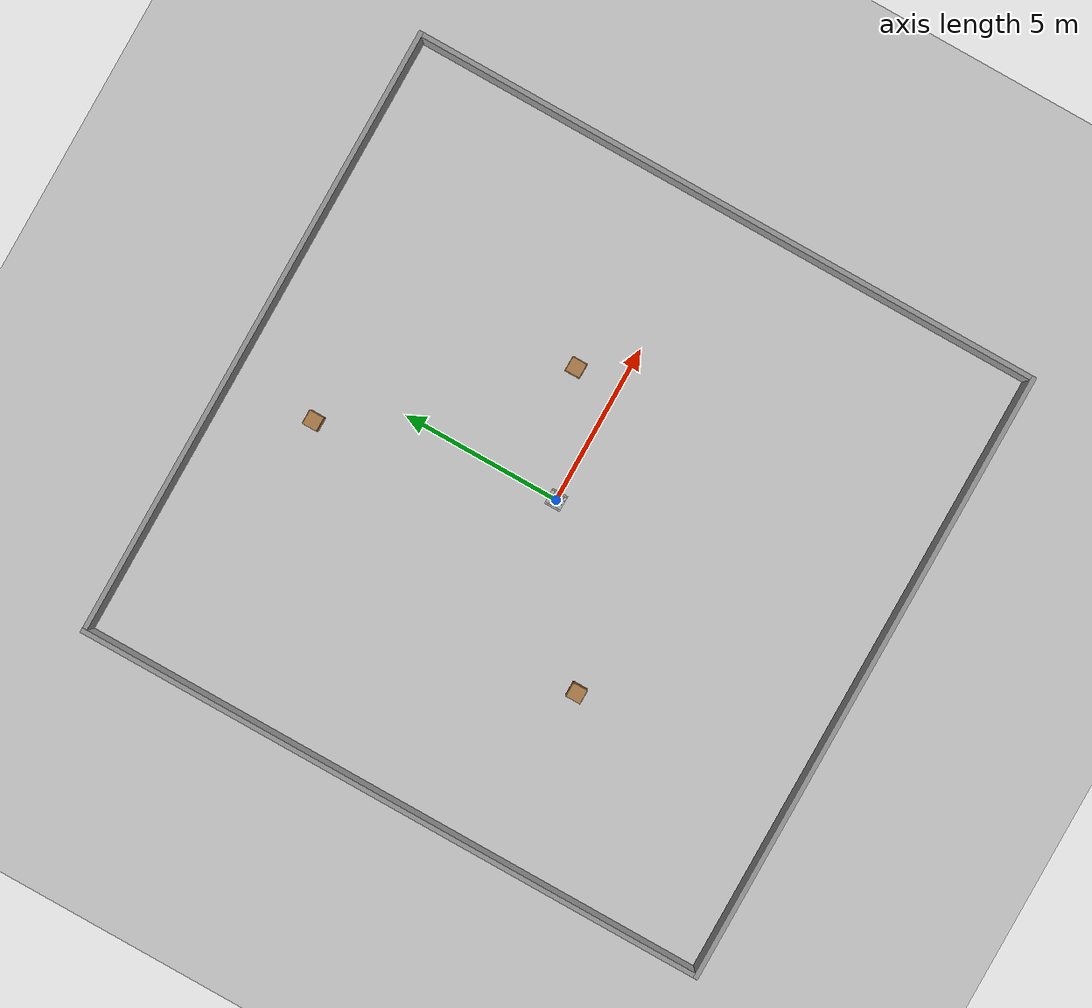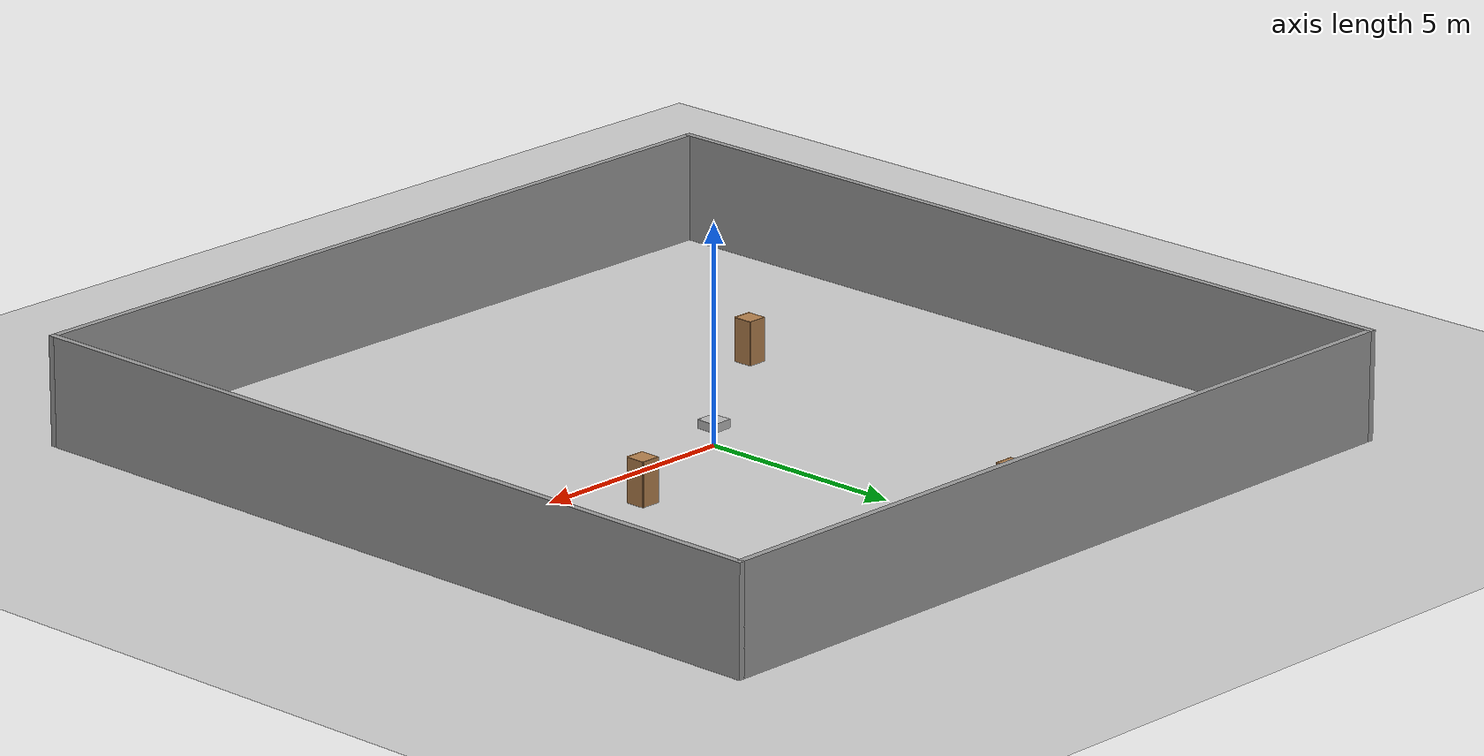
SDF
<sdf version="1.6">
 <world name="default">
  <light name="sun" type="directional">
   <pose>0 0 10 0 -0 0</pose>
   <diffuse>0.8 0.8 0.8 1</diffuse>
   <specular>0.2 0.2 0.2 1</specular>
   <attenuation>
    <range>1000</range>
    <constant>0.9</constant>
    <linear>0.01</linear>
    <quadratic>0.001</quadratic>
   </attenuation>
   <direction>-0.5 0.1 -0.9</direction>
  </light>
  <model name="animated_box">
   <pose>0 0 0.5 0 0 0</pose>
   <link name="link">
    <collision name="animated_box_collision"><geometry><box><size>0.2 0.3 0.2</size></box></geometry></collision>
    <visual name="visual"><geometry><box><size>0.2 0.3 0.2</size></box></geometry></visual>
    <inertial>
     <inertia><ixx>1</ixx><ixy>0</ixy><ixz>0</ixz><iyy>1</iyy><iyz>0</iyz><izz>1</izz></inertia>
     <mass>1</mass>
    </inertial>
    <gravity>0</gravity>
   </link>
   <plugin name="push_animate" filename="libbox_forward_movement14.so"/>
  </model>
  <model name="animated_box2">
   <pose>0 0 0.5 0 0 0</pose>
   <link name="link">
    <collision name="animated_box_collision2"><geometry><box><size>0.4 0.3 0.2</size></box></geometry></collision>
    <visual name="visual"><geometry><box><size>0.4 0.3 0.2</size></box></geometry></visual>
    <inertial>
     <inertia><ixx>1</ixx><ixy>0</ixy><ixz>0</ixz><iyy>1</iyy><iyz>0</iyz><izz>1</izz></inertia>
     <mass>1</mass>
    </inertial>
    <gravity>0</gravity>
   </link>
   <plugin name="push_animate" filename="libbox_forward_movement11.so"/>
  </model>
  <model name="animated_box3">
   <pose>0 0 0.5 0 0 0</pose>
   <link name="link">
    <collision name="animated_box_collision3"><geometry><box><size>0.4 0.5 0.2</size></box></geometry></collision>
    <visual name="visual"><geometry><box><size>0.4 0.5 0.2</size></box></geometry></visual>
    <inertial>
     <inertia><ixx>1</ixx><ixy>0</ixy><ixz>0</ixz><iyy>1</iyy><iyz>0</iyz><izz>1</izz></inertia>
     <mass>1</mass>
    </inertial>
    <gravity>0</gravity>
   </link>
   <plugin name="push_animate" filename="libbox_forward_movement12.so"/>
  </model>
  <model name="animated_box4">
   <pose>0 0 0.5 0 0 0</pose>
   <link name="link">
    <collision name="animated_box_collision4"><geometry><box><size>0.5 0.5 0.2</size></box></geometry></collision>
    <visual name="visual"><geometry><box><size>0.5 0.5 0.2</size></box></geometry></visual>
    <inertial>
     <inertia><ixx>1</ixx><ixy>0</ixy><ixz>0</ixz><iyy>1</iyy><iyz>0</iyz><izz>1</izz></inertia>
     <mass>1</mass>
    </inertial>
    <gravity>0</gravity>
   </link>
   <plugin name="push_animate" filename="libbox_forward_movement5.so"/>
  </model>
  <model name="ground_plane">
   <static>1</static>
   <link name="link">
    <collision name="collision">
     <geometry><plane><normal>0 0 1</normal><size>100 100</size></plane></geometry>
     <surface><friction><ode><mu>100</mu><mu2>50</mu2></ode></friction></surface>
    </collision>
    <visual name="visual">
     <cast_shadows>0</cast_shadows>
     <geometry><plane><normal>0 0 1</normal><size>100 100</size></plane></geometry>
     <material>
      <script><uri>file://media/materials/scripts/gazebo.material</uri><name>Gazebo/Grey</name></script>
     </material>
    </visual>
   </link>
  </model>
  <gravity>0 0 -9.8</gravity>
  <magnetic_field>6e-06 2.3e-05 -4.2e-05</magnetic_field>
  <atmosphere type="adiabatic"/>
  <physics name="default_physics" default="0" type="ode">
   <max_step_size>0.001</max_step_size>
   <real_time_factor>1</real_time_factor>
   <real_time_update_rate>1000</real_time_update_rate>
  </physics>
  <scene><ambient>0.4 0.4 0.4 1</ambient><background>0.7 0.7 0.7 1</background><shadows>1</shadows></scene>
  <audio><device>default</device></audio>
  <spherical_coordinates>
   <surface_model>EARTH_WGS84</surface_model>
   <latitude_deg>0</latitude_deg>
   <longitude_deg>0</longitude_deg>
   <elevation>0</elevation>
   <heading_deg>0</heading_deg>
  </spherical_coordinates>
  <model name="room">
   <pose>-0.1 -0.13 0 0 -0 0</pose>
   <link name="Wall_0">
    <collision name="Wall_0_Collision">
     <geometry><box><size>19.75 0.15 2.5</size></box></geometry>
     <pose>0 0 1.25 0 -0 0</pose>
    </collision>
    <visual name="Wall_0_Visual">
     <pose>0 0 1.25 0 -0 0</pose>
     <geometry><box><size>19.75 0.15 2.5</size></box></geometry>
     <material>
      <script><uri>file://media/materials/scripts/gazebo.material</uri><name>Gazebo/Grey</name></script>
      <ambient>1 1 1 1</ambient>
     </material>
     <meta><layer>0</layer></meta>
    </visual>
    <pose>-0 -10.05 0 0 -0 3.14159</pose>
   </link>
   <link name="Wall_2">
    <collision name="Wall_2_Collision">
     <geometry><box><size>20.25 0.15 2.5</size></box></geometry>
     <pose>0 0 1.25 0 -0 0</pose>
    </collision>
    <visual name="Wall_2_Visual">
     <pose>0 0 1.25 0 -0 0</pose>
     <geometry><box><size>20.25 0.15 2.5</size></box></geometry>
     <material>
      <script><uri>file://media/materials/scripts/gazebo.material</uri><name>Gazebo/Grey</name></script>
      <ambient>1 1 1 1</ambient>
     </material>
     <meta><layer>0</layer></meta>
    </visual>
    <pose>-9.8 0 0 0 -0 1.5708</pose>
   </link>
   <link name="Wall_3">
    <collision name="Wall_3_Collision">
     <geometry><box><size>19.75 0.15 2.5</size></box></geometry>
     <pose>0 0 1.25 0 -0 0</pose>
    </collision>
    <visual name="Wall_3_Visual">
     <pose>0 0 1.25 0 -0 0</pose>
     <geometry><box><size>19.75 0.15 2.5</size></box></geometry>
     <material>
      <script><uri>file://media/materials/scripts/gazebo.material</uri><name>Gazebo/Grey</name></script>
      <ambient>1 1 1 1</ambient>
     </material>
     <meta><layer>0</layer></meta>
    </visual>
    <pose>-0 10.05 0 0 -0 0</pose>
   </link>
   <link name="Wall_4">
    <collision name="Wall_4_Collision">
     <geometry><box><size>20.25 0.15 2.5</size></box></geometry>
     <pose>0 0 1.25 0 -0 0</pose>
    </collision>
    <visual name="Wall_4_Visual">
     <pose>0 0 1.25 0 -0 0</pose>
     <geometry><box><size>20.25 0.15 2.5</size></box></geometry>
     <material>
      <script><uri>file://media/materials/scripts/gazebo.material</uri><name>Gazebo/Grey</name></script>
      <ambient>1 1 1 1</ambient>
     </material>
     <meta><layer>0</layer></meta>
    </visual>
    <pose>9.8 0 0 0 -0 -1.5708</pose>
   </link>
   <static>1</static>
  </model>
  <model name="cabinet">
   <static>1</static>
   <link name="cabinet_bottom_plate">
    <inertial>
     <pose>0 0 -1 0 -0 0</pose>
     <inertia><ixx>2.05</ixx><ixy>0</ixy><ixz>0</ixz><iyy>2.05</iyy><iyz>0</iyz><izz>2.05</izz></inertia>
     <mass>25</mass>
    </inertial>
    <collision name="cabinet_bottom_plate_geom">
     <pose>0 0 0.01 0 -0 0</pose>
     <geometry><box><size>0.45 0.45 0.02</size></box></geometry>
    </collision>
    <visual name="cabinet_bottom_plate_geom_visual">
     <pose>0 0 0.01 0 -0 0</pose>
     <geometry><box><size>0.45 0.45 0.02</size></box></geometry>
     <material>
      <script><uri>file://media/materials/scripts/gazebo.material</uri><name>Gazebo/Wood</name></script>
     </material>
    </visual>
    <collision name="cabinet_bottom_plate_geom_cabinet_back_plate">
     <pose>0.235 0 0.51 0 -0 0</pose>
     <geometry><box><size>0.02 0.45 1.02</size></box></geometry>
    </collision>
    <visual name="cabinet_bottom_plate_geom_cabinet_back_plate_visual">
     <pose>0.235 0 0.51 0 -0 0</pose>
     <geometry><box><size>0.02 0.45 1.02</size></box></geometry>
     <material>
      <script><uri>file://media/materials/scripts/gazebo.material</uri><name>Gazebo/Wood</name></script>
     </material>
    </visual>
    <collision name="cabinet_bottom_plate_geom_cabinet_left_plate">
     <pose>0 0.235 0.51 0 -0 0</pose>
     <geometry><box><size>0.45 0.02 1.02</size></box></geometry>
    </collision>
    <visual name="cabinet_bottom_plate_geom_cabinet_left_plate_visual">
     <pose>0 0.235 0.51 0 -0 0</pose>
     <geometry><box><size>0.45 0.02 1.02</size></box></geometry>
     <material>
      <script><uri>file://media/materials/scripts/gazebo.material</uri><name>Gazebo/Wood</name></script>
     </material>
    </visual>
    <collision name="cabinet_bottom_plate_geom_cabinet_middle_plate">
     <pose>0 0 0.51 0 -0 0</pose>
     <geometry><box><size>0.45 0.45 0.02</size></box></geometry>
    </collision>
    <visual name="cabinet_bottom_plate_geom_cabinet_middle_plate_visual">
     <pose>0 0 0.51 0 -0 0</pose>
     <geometry><box><size>0.45 0.45 0.02</size></box></geometry>
     <material>
      <script><uri>file://media/materials/scripts/gazebo.material</uri><name>Gazebo/Wood</name></script>
     </material>
    </visual>
    <collision name="cabinet_bottom_plate_geom_cabinet_right_plate">
     <pose>0 -0.235 0.51 0 -0 0</pose>
     <geometry><box><size>0.45 0.02 1.02</size></box></geometry>
    </collision>
    <visual name="cabinet_bottom_plate_geom_cabinet_right_plate_visual">
     <pose>0 -0.235 0.51 0 -0 0</pose>
     <geometry><box><size>0.45 0.02 1.02</size></box></geometry>
     <material>
      <script><uri>file://media/materials/scripts/gazebo.material</uri><name>Gazebo/Wood</name></script>
     </material>
    </visual>
    <collision name="cabinet_bottom_plate_geom_cabinet_top_plate">
     <pose>0 0 1.01 0 -0 0</pose>
     <geometry><box><size>0.45 0.45 0.02</size></box></geometry>
    </collision>
    <visual name="cabinet_bottom_plate_geom_cabinet_top_plate_visual">
     <pose>0 0 1.01 0 -0 0</pose>
     <geometry><box><size>0.45 0.45 0.02</size></box></geometry>
     <material>
      <script><uri>file://media/materials/scripts/gazebo.material</uri><name>Gazebo/Wood</name></script>
     </material>
    </visual>
   </link>
   <pose>-4.5733 -3.25642 0 0 -0 0</pose>
  </model>
  <model name="cabinet_0">
   <static>1</static>
   <link name="cabinet_bottom_plate">
    <inertial>
     <pose>0 0 -1 0 -0 0</pose>
     <inertia><ixx>2.05</ixx><ixy>0</ixy><ixz>0</ixz><iyy>2.05</iyy><iyz>0</iyz><izz>2.05</izz></inertia>
     <mass>25</mass>
    </inertial>
    <collision name="cabinet_bottom_plate_geom">
     <pose>0 0 0.01 0 -0 0</pose>
     <geometry><box><size>0.45 0.45 0.02</size></box></geometry>
    </collision>
    <visual name="cabinet_bottom_plate_geom_visual">
     <pose>0 0 0.01 0 -0 0</pose>
     <geometry><box><size>0.45 0.45 0.02</size></box></geometry>
     <material>
      <script><uri>file://media/materials/scripts/gazebo.material</uri><name>Gazebo/Wood</name></script>
     </material>
    </visual>
    <collision name="cabinet_bottom_plate_geom_cabinet_back_plate">
     <pose>0.235 0 0.51 0 -0 0</pose>
     <geometry><box><size>0.02 0.45 1.02</size></box></geometry>
    </collision>
    <visual name="cabinet_bottom_plate_geom_cabinet_back_plate_visual">
     <pose>0.235 0 0.51 0 -0 0</pose>
     <geometry><box><size>0.02 0.45 1.02</size></box></geometry>
     <material>
      <script><uri>file://media/materials/scripts/gazebo.material</uri><name>Gazebo/Wood</name></script>
     </material>
    </visual>
    <collision name="cabinet_bottom_plate_geom_cabinet_left_plate">
     <pose>0 0.235 0.51 0 -0 0</pose>
     <geometry><box><size>0.45 0.02 1.02</size></box></geometry>
    </collision>
    <visual name="cabinet_bottom_plate_geom_cabinet_left_plate_visual">
     <pose>0 0.235 0.51 0 -0 0</pose>
     <geometry><box><size>0.45 0.02 1.02</size></box></geometry>
     <material>
      <script><uri>file://media/materials/scripts/gazebo.material</uri><name>Gazebo/Wood</name></script>
     </material>
    </visual>
    <collision name="cabinet_bottom_plate_geom_cabinet_middle_plate">
     <pose>0 0 0.51 0 -0 0</pose>
     <geometry><box><size>0.45 0.45 0.02</size></box></geometry>
    </collision>
    <visual name="cabinet_bottom_plate_geom_cabinet_middle_plate_visual">
     <pose>0 0 0.51 0 -0 0</pose>
     <geometry><box><size>0.45 0.45 0.02</size></box></geometry>
     <material>
      <script><uri>file://media/materials/scripts/gazebo.material</uri><name>Gazebo/Wood</name></script>
     </material>
    </visual>
    <collision name="cabinet_bottom_plate_geom_cabinet_right_plate">
     <pose>0 -0.235 0.51 0 -0 0</pose>
     <geometry><box><size>0.45 0.02 1.02</size></box></geometry>
    </collision>
    <visual name="cabinet_bottom_plate_geom_cabinet_right_plate_visual">
     <pose>0 -0.235 0.51 0 -0 0</pose>
     <geometry><box><size>0.45 0.02 1.02</size></box></geometry>
     <material>
      <script><uri>file://media/materials/scripts/gazebo.material</uri><name>Gazebo/Wood</name></script>
     </material>
    </visual>
    <collision name="cabinet_bottom_plate_geom_cabinet_top_plate">
     <pose>0 0 1.01 0 -0 0</pose>
     <geometry><box><size>0.45 0.45 0.02</size></box></geometry>
    </collision>
    <visual name="cabinet_bottom_plate_geom_cabinet_top_plate_visual">
     <pose>0 0 1.01 0 -0 0</pose>
     <geometry><box><size>0.45 0.45 0.02</size></box></geometry>
     <material>
      <script><uri>file://media/materials/scripts/gazebo.material</uri><name>Gazebo/Wood</name></script>
     </material>
    </visual>
   </link>
   <pose>3.61355 1.37648 0 0 -0 0</pose>
  </model>
  <model name="cabinet_1">
   <static>1</static>
   <link name="cabinet_bottom_plate">
    <inertial>
     <pose>0 0 -1 0 -0 0</pose>
     <inertia><ixx>2.05</ixx><ixy>0</ixy><ixz>0</ixz><iyy>2.05</iyy><iyz>0</iyz><izz>2.05</izz></inertia>
     <mass>25</mass>
    </inertial>
    <collision name="cabinet_bottom_plate_geom">
     <pose>0 0 0.01 0 -0 0</pose>
     <geometry><box><size>0.45 0.45 0.02</size></box></geometry>
    </collision>
    <visual name="cabinet_bottom_plate_geom_visual">
     <pose>0 0 0.01 0 -0 0</pose>
     <geometry><box><size>0.45 0.45 0.02</size></box></geometry>
     <material>
      <script><uri>file://media/materials/scripts/gazebo.material</uri><name>Gazebo/Wood</name></script>
     </material>
    </visual>
    <collision name="cabinet_bottom_plate_geom_cabinet_back_plate">
     <pose>0.235 0 0.51 0 -0 0</pose>
     <geometry><box><size>0.02 0.45 1.02</size></box></geometry>
    </collision>
    <visual name="cabinet_bottom_plate_geom_cabinet_back_plate_visual">
     <pose>0.235 0 0.51 0 -0 0</pose>
     <geometry><box><size>0.02 0.45 1.02</size></box></geometry>
     <material>
      <script><uri>file://media/materials/scripts/gazebo.material</uri><name>Gazebo/Wood</name></script>
     </material>
    </visual>
    <collision name="cabinet_bottom_plate_geom_cabinet_left_plate">
     <pose>0 0.235 0.51 0 -0 0</pose>
     <geometry><box><size>0.45 0.02 1.02</size></box></geometry>
    </collision>
    <visual name="cabinet_bottom_plate_geom_cabinet_left_plate_visual">
     <pose>0 0.235 0.51 0 -0 0</pose>
     <geometry><box><size>0.45 0.02 1.02</size></box></geometry>
     <material>
      <script><uri>file://media/materials/scripts/gazebo.material</uri><name>Gazebo/Wood</name></script>
     </material>
    </visual>
    <collision name="cabinet_bottom_plate_geom_cabinet_middle_plate">
     <pose>0 0 0.51 0 -0 0</pose>
     <geometry><box><size>0.45 0.45 0.02</size></box></geometry>
    </collision>
    <visual name="cabinet_bottom_plate_geom_cabinet_middle_plate_visual">
     <pose>0 0 0.51 0 -0 0</pose>
     <geometry><box><size>0.45 0.45 0.02</size></box></geometry>
     <material>
      <script><uri>file://media/materials/scripts/gazebo.material</uri><name>Gazebo/Wood</name></script>
     </material>
    </visual>
    <collision name="cabinet_bottom_plate_geom_cabinet_right_plate">
     <pose>0 -0.235 0.51 0 -0 0</pose>
     <geometry><box><size>0.45 0.02 1.02</size></box></geometry>
    </collision>
    <visual name="cabinet_bottom_plate_geom_cabinet_right_plate_visual">
     <pose>0 -0.235 0.51 0 -0 0</pose>
     <geometry><box><size>0.45 0.02 1.02</size></box></geometry>
     <material>
      <script><uri>file://media/materials/scripts/gazebo.material</uri><name>Gazebo/Wood</name></script>
     </material>
    </visual>
    <collision name="cabinet_bottom_plate_geom_cabinet_top_plate">
     <pose>0 0 1.01 0 -0 0</pose>
     <geometry><box><size>0.45 0.45 0.02</size></box></geometry>
    </collision>
    <visual name="cabinet_bottom_plate_geom_cabinet_top_plate_visual">
     <pose>0 0 1.01 0 -0 0</pose>
     <geometry><box><size>0.45 0.45 0.02</size></box></geometry>
     <material>
      <script><uri>file://media/materials/scripts/gazebo.material</uri><name>Gazebo/Wood</name></script>
     </material>
    </visual>
   </link>
   <pose>-1.45287 7.23271 0 0 -0 0</pose>
  </model>
 </world>
</sdf>
